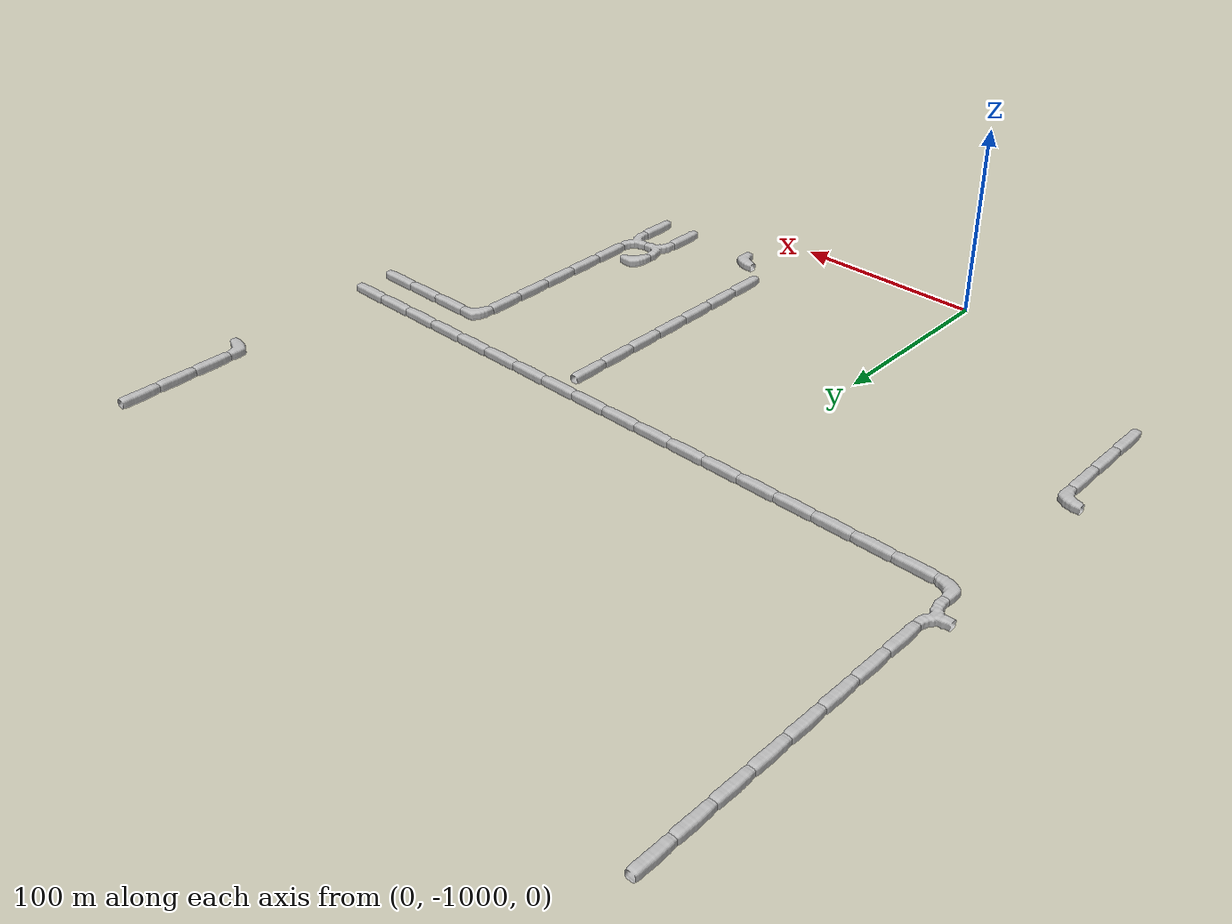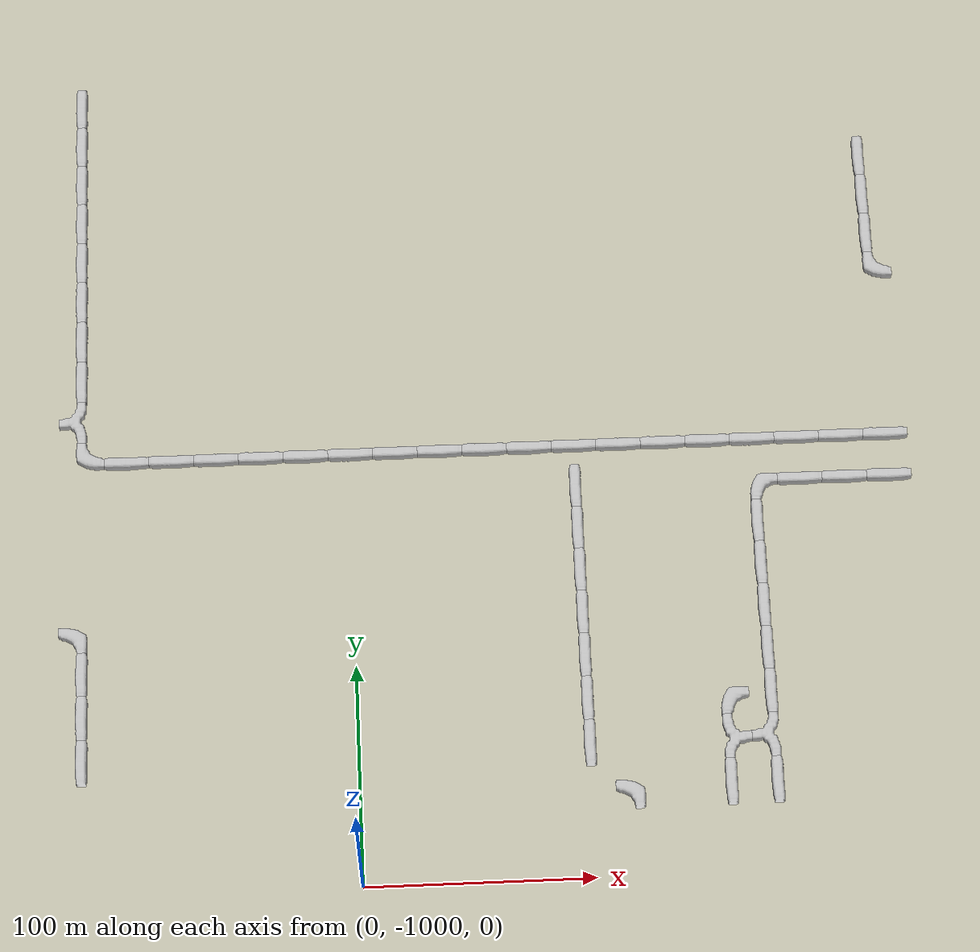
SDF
<sdf version="1.6">
 <world name="cave_32000_0">
  <include>
   <static>true</static>
   <name>cave_-6_-31</name>
   <pose>-120 -620 0 0 0 0.0</pose>
   <uri>model://cave_straight_20m</uri>
  </include>
  <include>
   <static>true</static>
   <name>cave_-6_-32</name>
   <pose>-120 -640 0 0 0 0.0</pose>
   <uri>model://cave_straight_20m</uri>
  </include>
  <include>
   <static>true</static>
   <name>cave_-6_-33</name>
   <pose>-120 -660 0 0 0 0.0</pose>
   <uri>model://cave_straight_20m</uri>
  </include>
  <include>
   <static>true</static>
   <name>cave_-6_-34</name>
   <pose>-120 -680 0 0 0 0.0</pose>
   <uri>model://cave_straight_20m</uri>
  </include>
  <include>
   <static>true</static>
   <name>cave_-6_-35</name>
   <pose>-120 -700 0 0 0 0.0</pose>
   <uri>model://cave_straight_20m</uri>
  </include>
  <include>
   <static>true</static>
   <name>cave_-6_-36</name>
   <pose>-120 -720 0 0 0 0.0</pose>
   <uri>model://cave_straight_20m</uri>
  </include>
  <include>
   <static>true</static>
   <name>cave_-6_-37</name>
   <pose>-120 -740 0 0 0 0.0</pose>
   <uri>model://cave_straight_20m</uri>
  </include>
  <include>
   <static>true</static>
   <name>cave_-6_-38</name>
   <pose>-120 -760 0 0 0 0.0</pose>
   <uri>model://cave_straight_20m</uri>
  </include>
  <include>
   <static>true</static>
   <name>cave_-6_-39</name>
   <pose>-120 -780 0 0 0 1.5707963267948966</pose>
   <uri>model://cave_3way_20m</uri>
  </include>
  <include>
   <static>true</static>
   <name>cave_-6_-40</name>
   <pose>-120 -800 0 0 0 0.0</pose>
   <uri>model://cave_L_20m</uri>
  </include>
  <include>
   <static>true</static>
   <name>cave_-5_-40</name>
   <pose>-100 -800 0 0 0 1.5707963267948966</pose>
   <uri>model://cave_straight_20m</uri>
  </include>
  <include>
   <static>true</static>
   <name>cave_-4_-40</name>
   <pose>-80 -800 0 0 0 1.5707963267948966</pose>
   <uri>model://cave_straight_20m</uri>
  </include>
  <include>
   <static>true</static>
   <name>cave_-3_-40</name>
   <pose>-60 -800 0 0 0 1.5707963267948966</pose>
   <uri>model://cave_straight_20m</uri>
  </include>
  <include>
   <static>true</static>
   <name>cave_-2_-40</name>
   <pose>-40 -800 0 0 0 1.5707963267948966</pose>
   <uri>model://cave_straight_20m</uri>
  </include>
  <include>
   <static>true</static>
   <name>cave_-1_-40</name>
   <pose>-20 -800 0 0 0 1.5707963267948966</pose>
   <uri>model://cave_straight_20m</uri>
  </include>
  <include>
   <static>true</static>
   <name>cave_0_-40</name>
   <pose>0 -800 0 0 0 1.5707963267948966</pose>
   <uri>model://cave_straight_20m</uri>
  </include>
  <include>
   <static>true</static>
   <name>cave_1_-40</name>
   <pose>20 -800 0 0 0 1.5707963267948966</pose>
   <uri>model://cave_straight_20m</uri>
  </include>
  <include>
   <static>true</static>
   <name>cave_2_-40</name>
   <pose>40 -800 0 0 0 1.5707963267948966</pose>
   <uri>model://cave_straight_20m</uri>
  </include>
  <include>
   <static>true</static>
   <name>cave_3_-40</name>
   <pose>60 -800 0 0 0 1.5707963267948966</pose>
   <uri>model://cave_straight_20m</uri>
  </include>
  <include>
   <static>true</static>
   <name>cave_4_-40</name>
   <pose>80 -800 0 0 0 1.5707963267948966</pose>
   <uri>model://cave_straight_20m</uri>
  </include>
  <include>
   <static>true</static>
   <name>cave_5_-40</name>
   <pose>100 -800 0 0 0 1.5707963267948966</pose>
   <uri>model://cave_straight_20m</uri>
  </include>
  <include>
   <static>true</static>
   <name>cave_6_-40</name>
   <pose>120 -800 0 0 0 1.5707963267948966</pose>
   <uri>model://cave_straight_20m</uri>
  </include>
  <include>
   <static>true</static>
   <name>cave_7_-40</name>
   <pose>140 -800 0 0 0 1.5707963267948966</pose>
   <uri>model://cave_straight_20m</uri>
  </include>
  <include>
   <static>true</static>
   <name>cave_8_-40</name>
   <pose>160 -800 0 0 0 1.5707963267948966</pose>
   <uri>model://cave_straight_20m</uri>
  </include>
  <include>
   <static>true</static>
   <name>cave_9_-40</name>
   <pose>180 -800 0 0 0 1.5707963267948966</pose>
   <uri>model://cave_straight_20m</uri>
  </include>
  <include>
   <static>true</static>
   <name>cave_10_-40</name>
   <pose>200 -800 0 0 0 1.5707963267948966</pose>
   <uri>model://cave_straight_20m</uri>
  </include>
  <include>
   <static>true</static>
   <name>cave_11_-40</name>
   <pose>220 -800 0 0 0 1.5707963267948966</pose>
   <uri>model://cave_straight_20m</uri>
  </include>
  <include>
   <static>true</static>
   <name>cave_12_-40</name>
   <pose>240 -800 0 0 0 1.5707963267948966</pose>
   <uri>model://cave_straight_20m</uri>
  </include>
  <include>
   <static>true</static>
   <name>cave_12_-36</name>
   <pose>240 -720 0 0 0 0.0</pose>
   <uri>model://cave_L_20m</uri>
  </include>
  <include>
   <static>true</static>
   <name>cave_12_-35</name>
   <pose>240 -700 0 0 0 0.0</pose>
   <uri>model://cave_straight_20m</uri>
  </include>
  <include>
   <static>true</static>
   <name>cave_12_-34</name>
   <pose>240 -680 0 0 0 0.0</pose>
   <uri>model://cave_straight_20m</uri>
  </include>
  <include>
   <static>true</static>
   <name>cave_12_-33</name>
   <pose>240 -660 0 0 0 0.0</pose>
   <uri>model://cave_straight_20m</uri>
  </include>
  <include>
   <static>true</static>
   <name>cave_12_-41</name>
   <pose>240 -820 0 0 0 1.5707963267948966</pose>
   <uri>model://cave_straight_20m</uri>
  </include>
  <include>
   <static>true</static>
   <name>cave_11_-41</name>
   <pose>220 -820 0 0 0 1.5707963267948966</pose>
   <uri>model://cave_straight_20m</uri>
  </include>
  <include>
   <static>true</static>
   <name>cave_10_-41</name>
   <pose>200 -820 0 0 0 1.5707963267948966</pose>
   <uri>model://cave_straight_20m</uri>
  </include>
  <include>
   <static>true</static>
   <name>cave_9_-41</name>
   <pose>180 -820 0 0 0 -1.5707963267948966</pose>
   <uri>model://cave_L_20m</uri>
  </include>
  <include>
   <static>true</static>
   <name>cave_9_-42</name>
   <pose>180 -840 0 0 0 0.0</pose>
   <uri>model://cave_straight_20m</uri>
  </include>
  <include>
   <static>true</static>
   <name>cave_9_-43</name>
   <pose>180 -860 0 0 0 0.0</pose>
   <uri>model://cave_straight_20m</uri>
  </include>
  <include>
   <static>true</static>
   <name>cave_9_-44</name>
   <pose>180 -880 0 0 0 0.0</pose>
   <uri>model://cave_straight_20m</uri>
  </include>
  <include>
   <static>true</static>
   <name>cave_9_-45</name>
   <pose>180 -900 0 0 0 0.0</pose>
   <uri>model://cave_straight_20m</uri>
  </include>
  <include>
   <static>true</static>
   <name>cave_9_-46</name>
   <pose>180 -920 0 0 0 0.0</pose>
   <uri>model://cave_straight_20m</uri>
  </include>
  <include>
   <static>true</static>
   <name>cave_9_-47</name>
   <pose>180 -940 0 0 0 1.5707963267948966</pose>
   <uri>model://cave_3way_20m</uri>
  </include>
  <include>
   <static>true</static>
   <name>cave_9_-48</name>
   <pose>180 -960 0 0 0 0.0</pose>
   <uri>model://cave_straight_20m</uri>
  </include>
  <include>
   <static>true</static>
   <name>cave_8_-47</name>
   <pose>160 -940 0 0 0 -1.5707963267948966</pose>
   <uri>model://cave_3way_20m</uri>
  </include>
  <include>
   <static>true</static>
   <name>cave_8_-48</name>
   <pose>160 -960 0 0 0 0.0</pose>
   <uri>model://cave_straight_20m</uri>
  </include>
  <include>
   <static>true</static>
   <name>cave_8_-46</name>
   <pose>160 -920 0 0 0 -1.5707963267948966</pose>
   <uri>model://cave_L_20m</uri>
  </include>
  <include>
   <static>true</static>
   <name>cave_-6_-44</name>
   <pose>-120 -880 0 0 0 3.141592653589793</pose>
   <uri>model://cave_L_20m</uri>
  </include>
  <include>
   <static>true</static>
   <name>cave_-6_-45</name>
   <pose>-120 -900 0 0 0 0.0</pose>
   <uri>model://cave_straight_20m</uri>
  </include>
  <include>
   <static>true</static>
   <name>cave_-6_-46</name>
   <pose>-120 -920 0 0 0 0.0</pose>
   <uri>model://cave_straight_20m</uri>
  </include>
  <include>
   <static>true</static>
   <name>cave_-6_-47</name>
   <pose>-120 -940 0 0 0 0.0</pose>
   <uri>model://cave_straight_20m</uri>
  </include>
  <include>
   <static>true</static>
   <name>cave_6_-48</name>
   <pose>120 -960 0 0 0 3.141592653589793</pose>
   <uri>model://cave_L_20m</uri>
  </include>
  <include>
   <static>true</static>
   <name>cave_5_-47</name>
   <pose>100 -940 0 0 0 0.0</pose>
   <uri>model://cave_straight_20m</uri>
  </include>
  <include>
   <static>true</static>
   <name>cave_5_-46</name>
   <pose>100 -920 0 0 0 0.0</pose>
   <uri>model://cave_straight_20m</uri>
  </include>
  <include>
   <static>true</static>
   <name>cave_5_-45</name>
   <pose>100 -900 0 0 0 0.0</pose>
   <uri>model://cave_straight_20m</uri>
  </include>
  <include>
   <static>true</static>
   <name>cave_5_-44</name>
   <pose>100 -880 0 0 0 0.0</pose>
   <uri>model://cave_straight_20m</uri>
  </include>
  <include>
   <static>true</static>
   <name>cave_5_-43</name>
   <pose>100 -860 0 0 0 0.0</pose>
   <uri>model://cave_straight_20m</uri>
  </include>
  <include>
   <static>true</static>
   <name>cave_5_-42</name>
   <pose>100 -840 0 0 0 0.0</pose>
   <uri>model://cave_straight_20m</uri>
  </include>
  <include>
   <static>true</static>
   <name>cave_5_-41</name>
   <pose>100 -820 0 0 0 0.0</pose>
   <uri>model://cave_straight_20m</uri>
  </include>
 </world>
</sdf>
